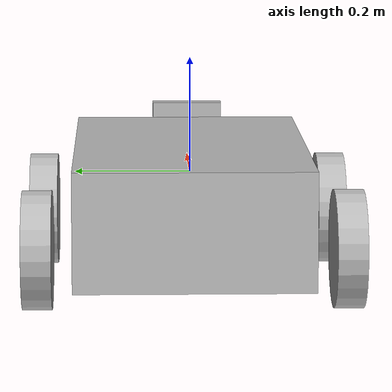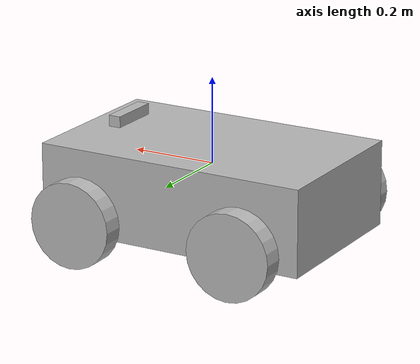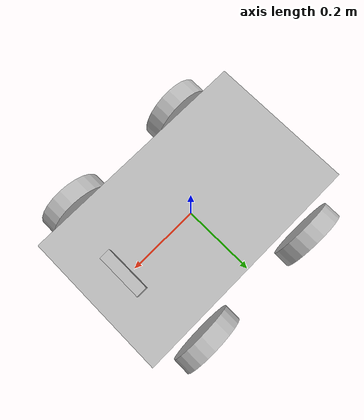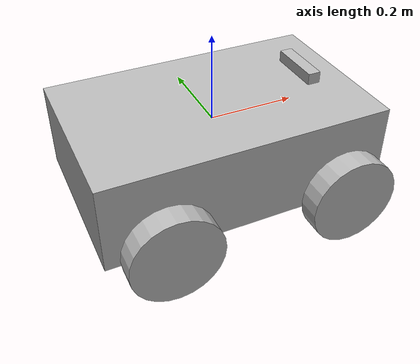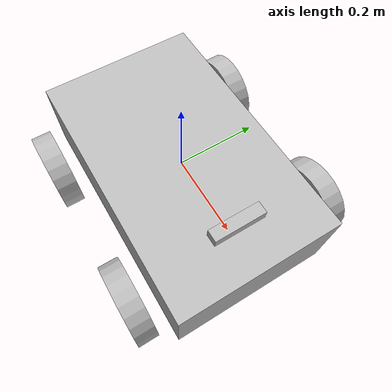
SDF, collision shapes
<?xml version='1.0'?>
<sdf version='1.4'>
  <model name="rover">
     <!-- If true, physics engine will ignore -->
     <static>false</static>
       <!-- Add the rectangular base of the robot -->
       <link name='chassis'>

         <!--Position of the center will be: -->
         <!--x=0 meters, y=0 meters, z=0.05 meters-->
         <!--Orientation of the center will be: -->
         <!--Roll=0 rad, Pitch=0 rad, Yaw=0 rad -->
         <pose>0 0 -0.05 0 0 0</pose>

           <!-- Specify the shape for collisions -->
           <collision name='collision'>
             <geometry>
               <box>
                 <!-- Box is 0.6 meters in length -->
                 <!-- 0.4 meters in width -->
                 <!-- 0.2 meters in height -->
                 <size>0.65 0.4 0.2</size>
               </box>
             </geometry>
           </collision>

           <!-- Specify the shape for visualization -->
           <visual name='visual'>
             <geometry>
               <box>
                 <!-- Box is 0.6 meters in length -->
                 <!-- 0.4 meters in width -->
                 <!-- 0.4 meters in height -->
                 <size>0.65 0.4 0.2</size>
               </box>
             </geometry>
           </visual>
        </link>

       <!-- Add the left wheel -->
       <link name="left_wheel0">
         <!--Position of the center will be: -->
         <!--x=2 meters, y=0.26 meters, z=0.1 meters-->
         <!--Orientation of the center will be: -->
         <!--Roll=0 rad, Pitch=90 deg, Yaw=90 deg -->
         <pose>0.2 0.26 -0.1 0 1.5707 1.5707</pose>
         <collision name="collision">
           <geometry>
             <cylinder>
               <radius>.1</radius>
               <length>.05</length>
             </cylinder>
           </geometry>
         </collision>
         <visual name="visual">
           <geometry>
             <cylinder>
               <radius>.1</radius>
               <length>.05</length>
             </cylinder>
           </geometry>
         </visual>
       </link>
       <link name="left_wheel1">
         <!--Position of the center will be: -->
         <!--x=2 meters, y=0.26 meters, z=0.1 meters-->
         <!--Orientation of the center will be: -->
         <!--Roll=0 rad, Pitch=90 deg, Yaw=90 deg -->
         <pose>-0.2 0.26 -0.1 0 1.5707 1.5707</pose>
         <collision name="collision">
           <geometry>
             <cylinder>
               <radius>.1</radius>
               <length>.05</length>
             </cylinder>
           </geometry>
         </collision>
         <visual name="visual">
           <geometry>
             <cylinder>
               <radius>.1</radius>
               <length>.05</length>
             </cylinder>
           </geometry>
         </visual>
       </link>
       <!-- Add the right wheel -->
       <link name="right_wheel0">
        <pose>0.2 -0.26 -0.1 0 1.5707 1.5707</pose>
         <collision name="collision">
           <geometry>
             <cylinder>
               <radius>.1</radius>
               <length>.05</length>
             </cylinder>
           </geometry>
         </collision>
         <visual name="visual">
           <geometry>
             <cylinder>
               <radius>.1</radius>
               <length>.05</length>
             </cylinder>
           </geometry>
         </visual>
       </link>
       <link name="right_wheel1">
        <pose>-0.2 -0.26 -0.1 0 1.5707 1.5707</pose>
         <collision name="collision">
           <geometry>
             <cylinder>
               <radius>.1</radius>
               <length>.05</length>
             </cylinder>
           </geometry>
         </collision>
         <visual name="visual">
           <geometry>
             <cylinder>
               <radius>.1</radius>
               <length>.05</length>
             </cylinder>
           </geometry>
         </visual>
       </link>

      <include>
          <uri>model://realsense_d455</uri>
          <pose>0.22 0 0.08 1.57079632679 0 1.57079632679</pose>
      </include>
      <joint type="fixed" name="realsense_d455_joint">
          <child>realsense_d455::camera_link</child>
          <parent>chassis</parent>
      </joint>
       <!-- Add motor for the left wheel -->
       <joint type="revolute" name="left_wheel_joint0">
         <pose>0 0 -0.03 0 0 0</pose>
         <child>left_wheel0</child>
         <parent>chassis</parent>
         <axis>
           <xyz>0 1 0</xyz>
         </axis>
       </joint>

       <!-- Add motor for the right wheel -->
       <joint type="revolute" name="right_wheel_joint0">
         <pose>0 0 0.03 0 0 0</pose>
         <child>right_wheel0</child>
         <parent>chassis</parent>
         <axis>
           <xyz>0 1 0</xyz>
         </axis>
       </joint>
             <!-- Add motor for the left wheel -->
       <joint type="revolute" name="left_wheel_joint1">
         <pose>0 0 -0.03 0 0 0</pose>
         <child>left_wheel1</child>
         <parent>chassis</parent>
         <axis>
           <xyz>0 1 0</xyz>
         </axis>
       </joint>

       <!-- Add motor for the right wheel -->
       <joint type="revolute" name="right_wheel_joint1">
         <pose>0 0 0.03 0 0 0</pose>
         <child>right_wheel1</child>
         <parent>chassis</parent>
         <axis>
           <xyz>0 1 0</xyz>
         </axis>
       </joint>
       <!-- Controls the differential drive robot -->
       <!-- Useful docs: https://github.com/ros-simulation/gazebo_ros_pkgs/wiki/ROS-2-Migration:-Skid-Steer-drive -->
      <plugin name='skid_steer_drive' filename='libgazebo_ros_diff_drive.so'>
        <ros>
          <!-- Set namespace -->
          <namespace>/rover</namespace>

          <!-- Remap default topics -->
          <argument>cmd_vel:=cmd_vel</argument>
          <argument>odom:=odom</argument>
        </ros>

        <!-- Update rate -->
        <update_rate>100</update_rate>

        <!-- Number of wheel pairs -->
        <num_wheel_pairs>2</num_wheel_pairs>

        <!-- wheels0 -->
        <left_joint>left_wheel_joint0</left_joint>
        <right_joint>right_wheel_joint0</right_joint>

        <!-- wheels1-->
        <left_joint>left_wheel_joint1</left_joint>
        <right_joint>right_wheel_joint1</right_joint>

        <!-- kinematics -->
        <wheel_separation>0.4</wheel_separation>
        <wheel_separation>0.4</wheel_separation>

        <wheel_diameter>0.2</wheel_diameter>
        <wheel_diameter>0.2</wheel_diameter>

        <!-- limits -->
        <max_wheel_torque>1</max_wheel_torque>
        <max_wheel_acceleration>0.2</max_wheel_acceleration>

        <!-- output -->
        <publish_odom>true</publish_odom>
        <publish_odom_tf>true</publish_odom_tf>
        <publish_wheel_tf>true</publish_wheel_tf>

        <odometry_frame>odom</odometry_frame>
        <robot_base_frame>chassis</robot_base_frame>

      </plugin>
  </model>
</sdf>

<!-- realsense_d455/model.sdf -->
<sdf version="1.4">
  <model name="realsense_d455">
    <pose>0 0 0 1.57079632679 0 1.57079632679</pose>
      <link name="camera_link">
        <collision name='collision_1'>
          <pose>0 0 0 0 0 0</pose>
          <geometry>
            <box>
              <size>0.124 0.026 0.029</size>
            </box>
          </geometry>
        </collision>
        <visual name='visual_1'>
          <pose>0 0 0.0125 0 0 0 0</pose>
          <geometry>
          <mesh>
            <uri>model://realsense_d455/meshes/d455.stl</uri>
            <scale>0.001 0.001 0.001</scale>
          </mesh>
          </geometry>
        </visual>
        <!-- Camera Sensor Faces Positive X Direction(Red) by Default, modified to match mesh front direction -->
        <sensor type="depth" name="realsense_camera">
          <!-- Set always_on only sensor, not on plugin -->
          <always_on>1</always_on>

          <!-- Set update_rate only sensor, not on plugin -->
          <update_rate>1</update_rate>
          <!-- Camera Specs based on https://www.intelrealsense.com/depth-camera-d455/ -->
          <camera name="camera">
            <pose>0 0 0 0 -1.57079632679 -1.57079632679</pose>

            <horizontal_fov>1.047198</horizontal_fov>
            <image>
              <width>640</width>
              <height>480</height>
              <format>R8G8B8</format>
            </image>
            <clip>
              <near>0.05</near>
              <far>300</far>
            </clip>
          </camera>

          <plugin name="plugin_name" filename="libgazebo_ros_camera.so">
            <ros>
              <namespace>camera</namespace>
              <argument>camera/image_raw:=color/image_raw</argument>
              <argument>camera/depth/image_raw:=depth/image_rect_raw</argument>
              <argument>camera/camera_info:=color/camera_info</argument>
              <argument>camera/depth/camera_info:=depth/camera_info</argument>
              <argument>camera/points:=depth/color/points</argument>
            </ros>

            <!-- Set camera name. If empty, defaults to sensor name (i.e. "sensor_name") -->
            <camera_name>camera</camera_name>

            <!-- Set TF frame name. If empty, defaults to link name (i.e. "link_name") -->
            <frame_name>camera_link</frame_name>

            <hack_baseline>0.07</hack_baseline>

            <!-- No need to repeat distortion parameters or to set autoDistortion -->

             <min_depth>0.6</min_depth>
             <max_depth>4</max_depth>
          </plugin>
        </sensor>
        <sensor type="imu" name="realsense_imu" >
          <pose>0 0 0 0 -1.57079632679 -1.57079632679</pose>
          <always_on>true</always_on>
          <!-- Publish at 30 hz -->
          <update_rate>1</update_rate>
          <plugin name="my_imu_plugin" filename="libgazebo_ros_imu_sensor.so">
            <ros>
              <!-- Will publish to /camera/imu/sample -->
              <namespace>/camera/imu</namespace>
              <argument>~/out:=sample</argument>
            </ros>
            <!-- frame_name ommited, will be "camera_link" -->
          </plugin>
        </sensor>
    </link>
    <static>true</static>
  </model>
</sdf>
